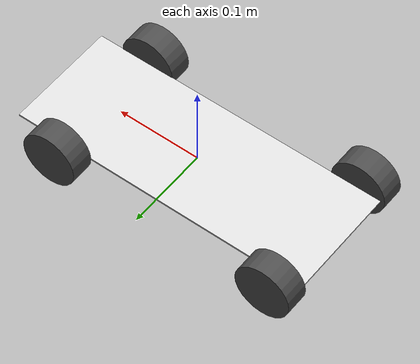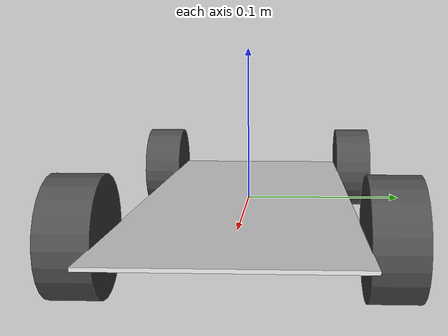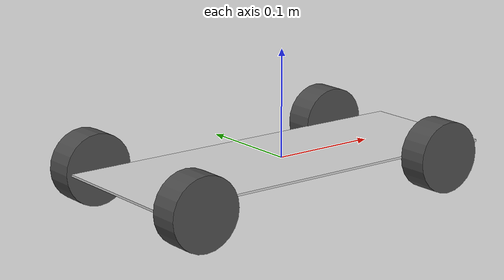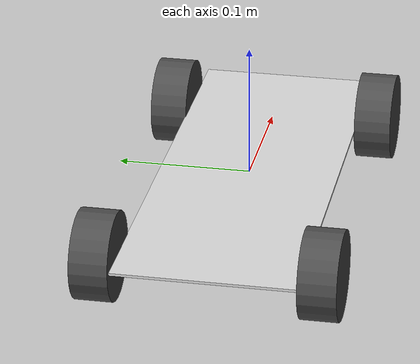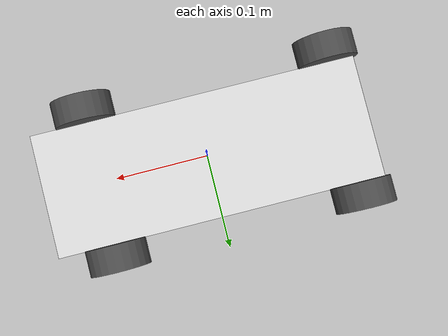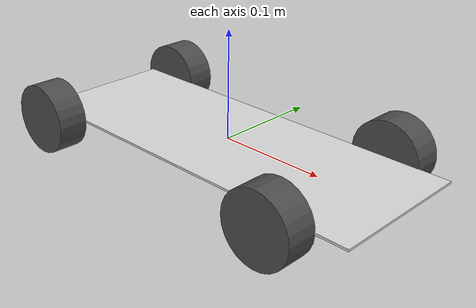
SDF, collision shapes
<?xml version='1.0'?>
<sdf version="1.8">
  <model name='automobile_obstacle'>
      <static>true</static>
    <include>
      <uri>model://chassis</uri>
      <pose>0 0 0 0 0 0</pose>
    </include>
    <!-- including a left rear wheel -->
    <include>
      <uri>model://wheel_left</uri>
      <pose>-0.152 0.081 0 0 0 0</pose>
      <name>wheel_rear_left</name>
    </include>
    <!-- including a front rear wheel -->
    <include>
      <uri>model://wheel_right</uri>
      <pose>-0.152 -0.081 0 0 0 0</pose>
      <name>wheel_rear_right</name>
    </include>
    <!-- including a left steering comp. -->
    <include>
      <uri>model://steering_column</uri>
      <pose>0.112 0.0725 0 0 0 0</pose>
      <name>steer_left</name>
    </include>
    <!-- including a right steering comp. -->
    <include>
      <uri>model://steering_column</uri>
      <pose>0.112 -0.0725 0 0 0 0</pose>
      <name>steer_right</name>
    </include>
    <!-- including a left front wheel -->
    <include>
      <uri>model://wheel_left</uri>
      <pose>0.118 0.081 0 0 0 0</pose>
      <name>wheel_front_left</name>
    </include>
    <!-- including a right front wheel -->
    <include>
      <uri>model://wheel_right</uri>
      <pose>0.118 -0.081 0 0 0 0</pose>
      <name>wheel_front_right</name>
    </include>

    <!-- includeing the car body -->
    <include>
      <uri>model://car_body</uri>
      <pose>-0.024 0.0 -0.028 0 0.0 0</pose>
      <name>car_body</name>
    </include>

    <!-- LIST OF JOINTS -->
    <joint name='joint_leftrear_rim' type='fixed'>
      <parent>chassis::link</parent>
      <child>wheel_rear_left::link_rim</child>
      <pose frame=''>0 0 0 0 -0 0</pose>

    </joint>

    <joint name='joint_rightrear_rim' type='fixed'>
      <parent>chassis::link</parent>
      <child>wheel_rear_right::link_rim</child>
      <pose frame=''>0 0 0 0 -0 0</pose>

    </joint>

    <!-- Right joint between the steering and the rim   -->
    <joint name='joint_rightfront_rim' type='fixed'>
      <parent>chassis::link</parent>
      <child>wheel_front_right::link_rim</child>
      <pose frame=''>0 0 0 0 -0 0</pose>

    </joint>

    <!-- Left joint between the steering and the rim   -->
    <joint name='joint_leftfront_rim' type='fixed'>
      <parent>chassis::link</parent>
      <child>wheel_front_left::link_rim</child>
      <pose frame=''>0 0 0 0 -0 0</pose>

    </joint>

    <!-- fixed joint for the car body -->
    <joint name='joint_body' type='fixed'>
      <parent>chassis::link</parent>
      <child>car_body::link</child>
      <pose frame=''>0 0 0 0 -0 0</pose>

    </joint>
  </model>
</sdf>

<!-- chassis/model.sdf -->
<sdf version="1.8">
  <model name='chassis'>
    <link name='link'>
      <inertial>
        <mass>0.26244</mass>
        <inertia>
          <ixx>0.00283444</ixx>
          <ixy>0</ixy>
          <ixz>0</ixz>
          <iyy>0.00039867</iyy>
          <iyz>0</iyz>
          <izz>0.00323293</izz>
        </inertia>
        <pose frame=''>0 0 0 0 -0 0</pose>
      </inertial>
      <pose frame=''>0 0 0 0 0 1.5708</pose>
      <gravity>1</gravity>
      <kinematic>0</kinematic>
      <enable_wind>0</enable_wind>
      <visual name='visual'>
        <pose frame=''>0 0 -0.0065 0 0 -1.57079</pose>
        <geometry>
          <mesh>
            <uri>model://chassis/meshes/chassisV5.dae</uri>
            <scale>1 1 1</scale>
          </mesh>
        </geometry>
        <material>
          <lighting>1</lighting>
          <shader type='vertex'>
            <normal_map>__default__</normal_map>
          </shader>
          <ambient>0.6 0.6 0.6 1</ambient>
          <diffuse>0.85 0.85 0.85 1</diffuse>
          <specular>0.6 0.6 0.6 1</specular>
          <emissive>0 0 0 1</emissive>
        </material>
        <transparency>0</transparency>
        <cast_shadows>1</cast_shadows>
      </visual>
      <collision name='collision'>
        <laser_retro>0</laser_retro>
        <max_contacts>10</max_contacts>
        <pose frame=''>0 0 0 0 -0 0</pose>
        <geometry>
          <box>
            <size>0.135 0.36 0.002</size>
          </box>
        </geometry>
        <surface>
          <friction>
            <ode>
              <mu>1</mu>
              <mu2>1</mu2>
              <fdir1>0 0 0</fdir1>
              <slip1>0</slip1>
              <slip2>0</slip2>
            </ode>
            <torsional>
              <coefficient>1</coefficient>
              <patch_radius>0</patch_radius>
              <surface_radius>0</surface_radius>
              <use_patch_radius>1</use_patch_radius>
              <ode>
                <slip>0</slip>
              </ode>
            </torsional>
          </friction>
          <bounce>
            <restitution_coefficient>0</restitution_coefficient>
            <threshold>1e+06</threshold>
          </bounce>
          <contact>
            <collide_without_contact>0</collide_without_contact>
            <collide_without_contact_bitmask>1</collide_without_contact_bitmask>
            <collide_bitmask>1</collide_bitmask>
            <ode>
              <soft_cfm>0</soft_cfm>
              <soft_erp>0.2</soft_erp>
              <kp>1e+13</kp>
              <kd>1</kd>
              <max_vel>0.01</max_vel>
              <min_depth>0</min_depth>
            </ode>
            <bullet>
              <split_impulse>1</split_impulse>
              <split_impulse_penetration_threshold>-0.01</split_impulse_penetration_threshold>
              <soft_cfm>0</soft_cfm>
              <soft_erp>0.2</soft_erp>
              <kp>1e+13</kp>
              <kd>1</kd>
            </bullet>
          </contact>
        </surface>
      </collision>

      <sensor name="imu_sensor" type="imu">
        <always_on>1</always_on>
        <update_rate>100</update_rate>
        <visualize>true</visualize>
        <topic>automobile/IMU</topic>
      </sensor>

    </link>
  </model>
</sdf>

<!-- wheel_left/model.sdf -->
<sdf version="1.8">
  <model name='wheel_left'>

    <link name='link_rim'>
      <inertial>
        <mass>0.038</mass>
        <inertia>
          <ixx>0.00001283</ixx>
          <ixy>0</ixy>
          <ixz>0</ixz>
          <iyy>0.00001283</iyy>
          <iyz>0</iyz>
          <izz>0.00002069</izz>
        </inertia>
        <pose frame=''>0 0 0 0 -0 0</pose>
      </inertial>
      <pose frame=''>0.0 0.0 0 1.5708 0 0</pose>
      <gravity>1</gravity>
      <kinematic>0</kinematic>
      <enable_wind>0</enable_wind>
      <visual name='visual'>
       <pose frame=''>0 0 0 -1.5708 0 0</pose>
       <geometry>
          <mesh>
            <uri>model://wheel_left/meshes/rim.dae</uri>
            <scale>1 1 1</scale>
          </mesh>
        </geometry>
        <material>
          <lighting>1</lighting>
          <shader type='vertex'>
            <normal_map>__default__</normal_map>
          </shader>
          <ambient>0.2 0.2 0.2 1</ambient>
          <diffuse>0.3 0.3 0.3 1</diffuse>
          <specular>0.5 0.5 0.5 1</specular>
          <emissive>0.0 0.0 0.0 0.0</emissive>
        </material>
        <transparency>0</transparency>
        <cast_shadows>1</cast_shadows>
      </visual>
      <collision name='collision'>
        <laser_retro>0</laser_retro>
        <max_contacts>10</max_contacts>
        <pose frame=''>0 0 0 0 -0 0</pose>
        <geometry>
          <cylinder>
            <radius>0.033000</radius>
            <length>0.028000</length>
          </cylinder>
        </geometry>
        <surface>
          <friction>
            <ode>
              <mu>0.7</mu>
              <mu2>0.7</mu2>
              <fdir1>0 0 0</fdir1>
              <slip1>0</slip1>
              <slip2>0</slip2>
            </ode>
            <torsional>
              <coefficient>1</coefficient>
              <patch_radius>0</patch_radius>
              <surface_radius>0</surface_radius>
              <use_patch_radius>1</use_patch_radius>
              <ode>
                <slip>0</slip>
              </ode>
            </torsional>
          </friction>
          <bounce>
            <restitution_coefficient>0</restitution_coefficient>
            <threshold>1e+06</threshold>
          </bounce>
          <contact>
            <collide_without_contact>0</collide_without_contact>
            <collide_without_contact_bitmask>1</collide_without_contact_bitmask>
            <collide_bitmask>1</collide_bitmask>
            <ode>
              <soft_cfm>0</soft_cfm>
              <soft_erp>0.2</soft_erp>
              <kp>1e+07</kp>
              <kd>1</kd>
              <max_vel>0.01</max_vel>
              <min_depth>0</min_depth>
            </ode>
            <bullet>
              <split_impulse>1</split_impulse>
              <split_impulse_penetration_threshold>-0.01</split_impulse_penetration_threshold>
              <soft_cfm>0</soft_cfm>
              <soft_erp>0.2</soft_erp>
              <kp>1e+07</kp>
              <kd>1</kd>
            </bullet>
          </contact>
        </surface>
      </collision>
    </link>

  </model>
</sdf>

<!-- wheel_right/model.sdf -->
<sdf version="1.8">
  <model name='wheel_right'>

    <link name='link_rim'>
      <inertial>
        <mass>0.038</mass>
        <inertia>
          <ixx>0.00001283</ixx>
          <ixy>0</ixy>
          <ixz>0</ixz>
          <iyy>0.00001283</iyy>
          <iyz>0</iyz>
          <izz>0.00002069</izz>
        </inertia>
        <pose frame=''>0 0 0 0 -0 0</pose>
      </inertial>
      <pose frame=''>0.0 0.0 0 1.5708 0 0</pose>
      <gravity>1</gravity>
      <kinematic>0</kinematic>
      <enable_wind>0</enable_wind>
      <visual name='visual'>
       <pose frame=''>0 0 0 -1.5708 0 0</pose>
       <geometry>
          <mesh>
            <uri>model://wheel_right/meshes/rim.dae</uri>
            <scale>1 1 1</scale>
          </mesh>
        </geometry>
        <material>
          <lighting>1</lighting>
          <shader type='vertex'>
            <normal_map>__default__</normal_map>
          </shader>
          <ambient>0.2 0.2 0.2 1</ambient>
          <diffuse>0.3 0.3 0.3 1</diffuse>
          <specular>0.5 0.5 0.5 1</specular>
          <emissive>0.0 0.0 0.0 0.0</emissive>
        </material>
        <transparency>0</transparency>
        <cast_shadows>1</cast_shadows>
      </visual>
      <collision name='collision'>
        <laser_retro>0</laser_retro>
        <max_contacts>10</max_contacts>
        <pose frame=''>0 0 0 0 -0 0</pose>
        <geometry>
          <cylinder>
            <radius>0.033000</radius>
            <length>0.028000</length>
          </cylinder>
        </geometry>
        <surface>
          <friction>
            <ode>
              <mu>0.7</mu>
              <mu2>0.7</mu2>
              <fdir1>0 0 0</fdir1>
              <slip1>0</slip1>
              <slip2>0</slip2>
            </ode>
            <torsional>
              <coefficient>1</coefficient>
              <patch_radius>0</patch_radius>
              <surface_radius>0</surface_radius>
              <use_patch_radius>1</use_patch_radius>
              <ode>
                <slip>0</slip>
              </ode>
            </torsional>
          </friction>
          <bounce>
            <restitution_coefficient>0</restitution_coefficient>
            <threshold>1e+06</threshold>
          </bounce>
          <contact>
            <collide_without_contact>0</collide_without_contact>
            <collide_without_contact_bitmask>1</collide_without_contact_bitmask>
            <collide_bitmask>1</collide_bitmask>
            <ode>
              <soft_cfm>0</soft_cfm>
              <soft_erp>0.2</soft_erp>
              <kp>1e+07</kp>
              <kd>1</kd>
              <max_vel>0.01</max_vel>
              <min_depth>0</min_depth>
            </ode>
            <bullet>
              <split_impulse>1</split_impulse>
              <split_impulse_penetration_threshold>-0.01</split_impulse_penetration_threshold>
              <soft_cfm>0</soft_cfm>
              <soft_erp>0.2</soft_erp>
              <kp>1e+07</kp>
              <kd>1</kd>
            </bullet>
          </contact>
        </surface>
      </collision>
    </link>

  </model>
</sdf>

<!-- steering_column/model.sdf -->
<sdf version="1.8">
  <model name='steering_column'>
    <link name='link_steer'>
      <inertial>
        <mass>0.001</mass>
        <inertia>
          <ixx>0.00014583</ixx>
          <ixy>0</ixy>
          <ixz>0</ixz>
          <iyy>0.00014583</iyy>
          <iyz>0</iyz>
          <izz>0.000125</izz>
        </inertia>
        <pose frame=''>0 0 0 0 -0 0</pose>
      </inertial>
      <pose frame=''>0 0 0 1.5708 0 0</pose>
      <gravity>1</gravity>
      <self_collide>0</self_collide>
      <kinematic>0</kinematic>
      <enable_wind>0</enable_wind>
      <visual name='visual'>
        <pose frame=''>0 0 0 0 -0 0</pose>
        <geometry>
          <cylinder>
            <radius>0.001</radius>
            <length>0.01</length>
          </cylinder>
        </geometry>
        <material>
          <lighting>1</lighting>
          <script>
            <uri>file://media/materials/scripts/gazebo.material</uri>
            <name>Gazebo/Grey</name>
          </script>
          <shader type='vertex'>
            <normal_map>__default__</normal_map>
          </shader>
          <ambient>0.3 0.3 0.3 1</ambient>
          <diffuse>0.7 0.7 0.7 1</diffuse>
          <specular>0.01 0.01 0.01 1</specular>
          <emissive>0 0 0 1</emissive>
        </material>
        <transparency>0</transparency>
        <cast_shadows>1</cast_shadows>
      </visual>
      <collision name='collision'>
        <laser_retro>0</laser_retro>
        <max_contacts>10</max_contacts>
        <pose frame=''>0 0 0 0 -0 0</pose>
        <geometry>
          <cylinder>
            <radius>0.001</radius>
            <length>0.01</length>
          </cylinder>
        </geometry>
        <surface>
          <friction>
            <ode>
              <mu>1</mu>
              <mu2>1</mu2>
              <fdir1>0 0 0</fdir1>
              <slip1>0</slip1>
              <slip2>0</slip2>
            </ode>
            <torsional>
              <coefficient>1</coefficient>
              <patch_radius>0</patch_radius>
              <surface_radius>0</surface_radius>
              <use_patch_radius>1</use_patch_radius>
              <ode>
                <slip>0</slip>
              </ode>
            </torsional>
          </friction>
          <bounce>
            <restitution_coefficient>0</restitution_coefficient>
            <threshold>1e+06</threshold>
          </bounce>
          <contact>
            <collide_without_contact>0</collide_without_contact>
            <collide_without_contact_bitmask>1</collide_without_contact_bitmask>
            <collide_bitmask>1</collide_bitmask>
            <ode>
              <soft_cfm>0</soft_cfm>
              <soft_erp>0.2</soft_erp>
              <kp>1e+13</kp>
              <kd>1</kd>
              <max_vel>0.01</max_vel>
              <min_depth>0</min_depth>
            </ode>
            <bullet>
              <split_impulse>1</split_impulse>
              <split_impulse_penetration_threshold>-0.01</split_impulse_penetration_threshold>
              <soft_cfm>0</soft_cfm>
              <soft_erp>0.2</soft_erp>
              <kp>1e+13</kp>
              <kd>1</kd>
            </bullet>
          </contact>
        </surface>
      </collision>
    </link>

  </model>
</sdf>

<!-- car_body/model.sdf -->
<sdf version="1.8">
  <model name='body'>
    <link name='link'>
      <inertial>
        <mass>1</mass>
        <inertia>
          <ixx>0.166667</ixx>
          <ixy>0</ixy>
          <ixz>0</ixz>
          <iyy>0.166667</iyy>
          <iyz>0</iyz>
          <izz>0.166667</izz>
        </inertia>
      </inertial>
      <pose frame=''>0 -0 0 0 -0 0</pose>
      <visual name='visual'>
        <pose frame=''>0 0 0 0 -0 0</pose>
        <geometry>
          <mesh>
            <uri>model://car_body/meshes/CarBody.dae</uri>
            <scale>1 1 1</scale>
          </mesh>
        </geometry>
        <material>
          <diffuse>1 1 1 1</diffuse>
          <specular>0.5 0.5 0.5 1</specular>
          <pbr>
            <metal>
              <albedo_map>model://car_body/meshes/Colors.png</albedo_map>
            </metal>
          </pbr>
        </material>
        <transparency>0</transparency>
        <cast_shadows>1</cast_shadows>
      </visual>
    </link>
    <static>0</static>
    <allow_auto_disable>1</allow_auto_disable>
  </model>
</sdf>
